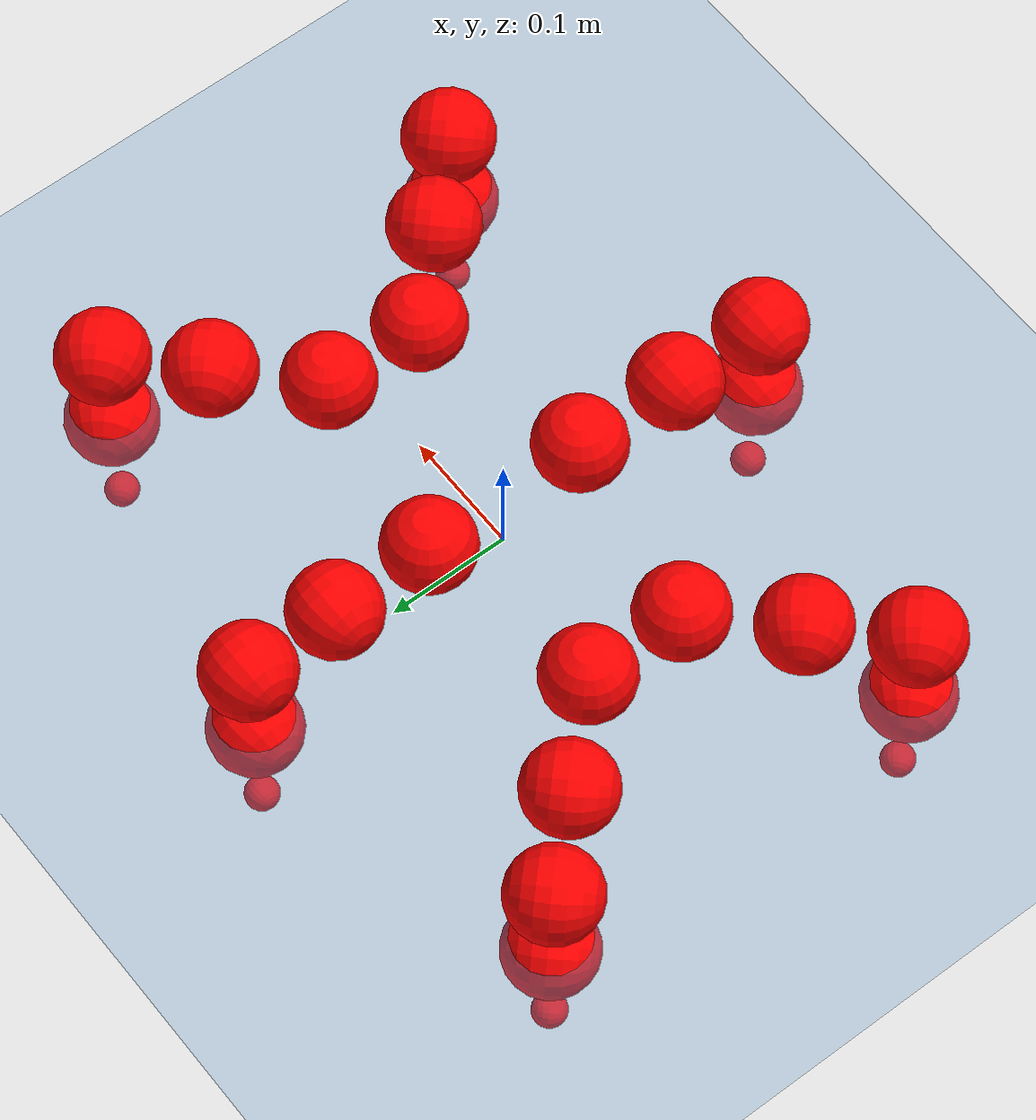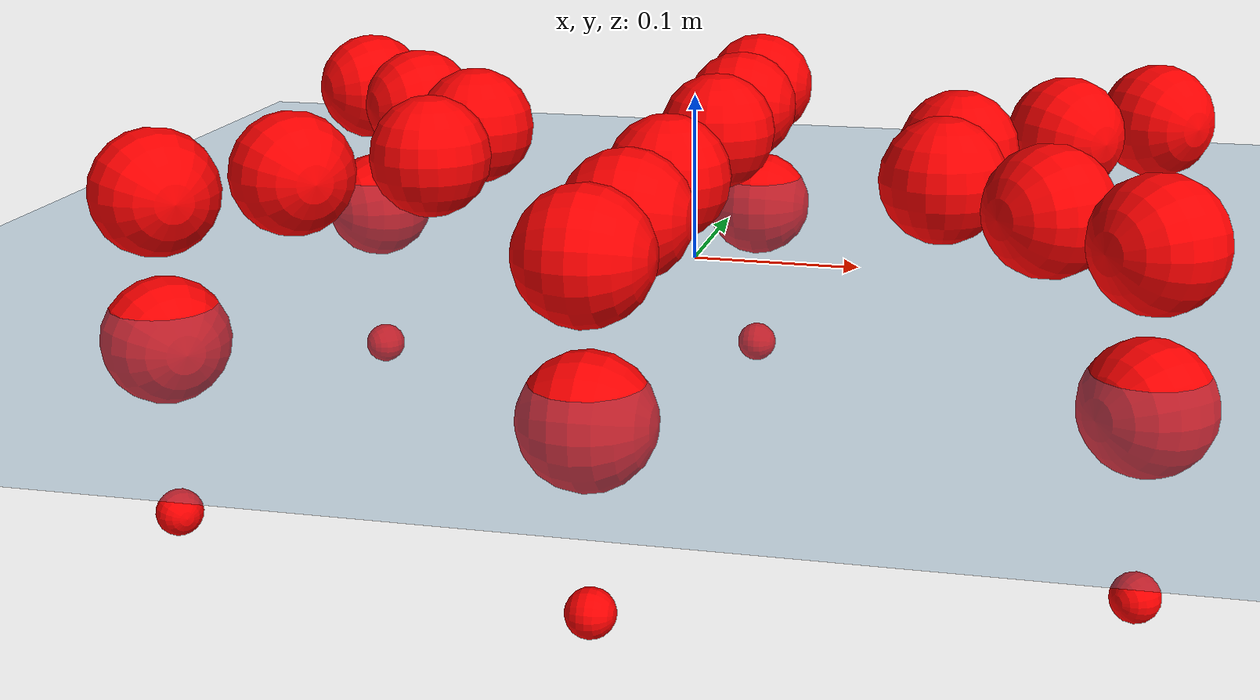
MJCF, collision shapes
<mujoco model="Golem">
  <compiler angle="radian" assetdir="assets" balanceinertia="true" inertiafromgeom="false"/>

  <option timestep="0.005" density="1.2" viscosity="2e-05"/>

  <size nkey="1"/>

  <visual>
    <quality shadowsize="8192"/>
    <map shadowclip="0.5"/>
  </visual>

  <default>
    <default class="/">
      <joint armature="0.01" damping="0.01" frictionloss="0.01"/>
      <geom contype="0" conaffinity="0" group="1" solref="-1000 -80"/>
      <site size="0.01 0.005 0.005" group="5"/>
      <general forcelimited="true" biastype="affine" gainprm="25" biasprm="0 -25 -0.5"/>
      <default class="visual">
        <geom type="mesh" group="2"/>
      </default>
      <default class="collision">
        <geom group="3"/>
      </default>
      <default class="foot">
        <geom size="0.01 0 0" condim="6" group="4" priority="1" solimp="0.015 1 0.01"/>
      </default>
      <default class="reward_collision_sphere">
        <geom group="5" rgba="1 0 0 1"/>
      </default>
    </default>
  </default>

  <asset>
    <texture type="skybox" colorspace="auto" name="//unnamed_texture_0" builtin="gradient" rgb1="0.95 0.95 0.95" rgb2="0.95 0.95 0.95" width="100" height="600"/>
    <texture type="2d" colorspace="auto" name="texplane" builtin="checker" rgb1="0.345 0.575 0.748" rgb2="0.345 0.575 0.748" markrgb="1 1 1" width="512" height="512"/>
    <material name="MatPlane" class="/" texture="texplane" texuniform="true" texrepeat="2 2" specular="0.9"/>
    <mesh name="body" class="/" file="body.stl" scale="0.001 0.001 0.001"/>
    <mesh name="coxa" class="/" file="coxa.stl" scale="0.001 0.001 0.001"/>
    <mesh name="femur" class="/" file="femur.stl" scale="0.001 0.001 0.001"/>
    <mesh name="tibia" class="/" file="tibia.stl" scale="0.001 0.001 0.001"/>
    <mesh name="tarsus" class="/" file="tarsus.stl" scale="0.001 0.001 0.001"/>
  </asset>

  <worldbody>
    <geom name="floor" class="/" size="100 100 0.125" type="plane" group="0" material="MatPlane"/>
    <light name="toplight_shadow" class="/" pos="0 0 5" dir="0.0990148 0.0990148 -0.990148" type="directional" ambient="0.04 0.04 0.04" diffuse="0.55 0.55 0.55" specular="0.12 0.12 0.12"/>
    <light name="toplight_fill" class="/" pos="0 0 5" dir="0.0990148 0.0990148 -0.990148" type="directional" castshadow="false" ambient="0.04 0.04 0.04" diffuse="0.3 0.3 0.3" specular="0.08 0.08 0.08"/>
    <body name="trunk" pos="0.000302839 -0.000277685 -0.000106034" quat="1 3.22541e-06 -4.11007e-05 5.46796e-05">
      <inertial pos="-0.000372128 -0.00045236 -0.00367707" quat="0.999991 -0.00230026 0.000375251 0.00362024" mass="2.75525" diaginertia="0.00874115 0.0021752 0.0108671"/>
      <joint name="//unnamed_joint_0" type="free"/>
      <geom name="//unnamed_geom_1" class="/" pos="0 0 0.0651005" quat="1 0 0 0" type="mesh" rgba="0.9 0.9 0.9 1" mesh="body"/>
      <site name="imu" class="/" pos="0.125278 0.00140533 0.104072" size="0.00910437"/>
      <camera name="track" class="/" pos="0 -1.47822 0" quat="0.707107 0.707107 0 0" mode="trackcom"/>
      <camera name="ego_camera" class="/" pos="0.126751 0 0.101719" quat="-0.5 -0.5 0.5 0.5"/>
      <body name="coxa_RR" pos="-0.173356 -0.0612346 0.0647323" quat="0.382626 5.55232e-05 7.76622e-05 -0.923903">
        <inertial pos="-0.000208134 -1.19951e-05 0.000175009" quat="0.999998 -0.000275911 0.000173572 -0.00180515" mass="0.149651" diaginertia="0.00884142 0.00217671 0.0108591"/>
        <joint name="coxa_joint_RR" class="/" pos="0 0 0" axis="-0.000198808 1.55169e-05 -1" range="-3.13651 3.15512" armature="0.0093988" damping="0.00911649" frictionloss="0.00903953"/>
        <geom name="//unnamed_geom_2" class="/" type="mesh" rgba="0.2 0.2 0.2 1" mesh="coxa"/>
        <geom name="//unnamed_geom_3" class="reward_collision_sphere" size="0.0364175" pos="-0.0292502 0 0"/>
        <body name="femur_RR" pos="0.0574731 0.0004792 0.000225926" quat="0.499778 -0.500165 0.500312 0.499745">
          <inertial pos="-0.000447871 -0.000691388 0.000537147" quat="1 0.000155063 0.000301019 3.21655e-05" mass="0.151149" diaginertia="0.00885649 0.00221709 0.0109302"/>
          <joint name="femur_joint_RR" class="/" pos="0 0 0" axis="5.47287e-05 7.40519e-05 -1" range="-3.12951 3.14433" armature="0.00949583" damping="0" frictionloss="0.00871028"/>
          <geom name="//unnamed_geom_4" class="/" type="mesh" rgba="0.9 0.9 0.9 1" mesh="femur"/>
          <geom name="//unnamed_geom_5" class="reward_collision_sphere" size="0.0364175"/>
          <body name="tibia_RR" pos="0.000634511 -0.0803117 0.000461573" quat="-0.000140931 1 -0.000209552 6.79683e-05">
            <inertial pos="0.000737385 0.000857387 -0.00011284" quat="0.999991 -0.000940499 -0.00296906 -0.00277377" mass="0.151096" diaginertia="0.00887137 0.00220702 0.0108674"/>
            <joint name="tibia_joint_RR" class="/" pos="0 0 0" axis="-0.00320367 -0.00263174 0.999991" range="-3.13827 3.13828" armature="0.00946476" damping="0.00136548" frictionloss="0.00898205"/>
            <geom name="//unnamed_geom_6" class="/" type="mesh" rgba="0.2 0.2 0.2 1" mesh="tibia"/>
            <geom name="//unnamed_geom_7" class="reward_collision_sphere" size="0.0364175"/>
            <body name="tarsus_RR" pos="0.0852193 -3.52437e-05 -0.000421755" quat="1 2.83e-05 0.000165101 2.36028e-06">
              <inertial pos="0.0589967 7.38799e-05 0.000799659" quat="0.500016 0.499603 0.500539 0.499842" mass="0.151498" diaginertia="0.00880895 0.00219638 0.0109294"/>
              <joint name="tarsus_joint_RR" class="/" pos="0 0 0" axis="-0.00265012 0.00125164 0.999996" range="-3.1399 3.13567" armature="0.00867964" damping="0.00849139" frictionloss="0.00874659"/>
              <geom name="//unnamed_geom_8" class="/" type="mesh" rgba="0.9 0.9 0.9 1" mesh="tarsus"/>
              <geom name="foot_1" class="foot" size="0.00926158" pos="0.109201 0 0" quat="0 -0.707107 0 0.707107"/>
              <geom name="//unnamed_geom_10" class="reward_collision_sphere" size="0.0364175"/>
              <geom name="//unnamed_geom_11" class="reward_collision_sphere" size="0.0136566" pos="0.104813 0 0"/>
              <site name="foot_1" class="foot" pos="0.109201 0 0" quat="0 -0.707107 0 0.707107" size="0.00910437"/>
            </body>
          </body>
        </body>
      </body>
      <body name="coxa_RM" pos="-0.000673379 -0.0984511 0.0658451" quat="0.707097 4.75545e-05 0.000113017 -0.707116">
        <inertial pos="0.00073837 0.000128538 0.000460649" quat="1 0.000136519 -8.98184e-06 -0.000143053" mass="0.151581" diaginertia="0.00871064 0.00220919 0.0108746"/>
        <joint name="coxa_joint_RM" class="/" pos="0 0 0" axis="-4.3817e-07 -7.8069e-07 -1" stiffness="0.000492564" range="-3.14583 3.14105" armature="0.00906644" damping="0.00919644" frictionloss="0.00906902"/>
        <geom name="//unnamed_geom_12" class="/" type="mesh" rgba="0.2 0.2 0.2 1" mesh="coxa"/>
        <geom name="//unnamed_geom_13" class="reward_collision_sphere" size="0.0364175" pos="-0.0292502 0 0"/>
        <body name="femur_RM" pos="0.0579422 -0.00128663 -0.000691599" quat="0.500094 -0.499886 0.500095 0.499925">
          <inertial pos="-0.00012649 -5.53889e-05 4.83673e-07" quat="0.999997 0.00195081 0.000399396 -0.0014033" mass="0.149665" diaginertia="0.00873135 0.00220684 0.0108282"/>
          <joint name="femur_joint_RM" class="/" pos="0 0 0" axis="-0.000591085 0.00142235 -0.999999" range="-3.14338 3.14144" armature="0.00901228" damping="0.0112605" frictionloss="0.0090937"/>
          <geom name="//unnamed_geom_14" class="/" type="mesh" rgba="0.9 0.9 0.9 1" mesh="femur"/>
          <geom name="//unnamed_geom_15" class="reward_collision_sphere" size="0.0364175"/>
          <body name="tibia_RM" pos="0.000776719 -0.0793012 -0.000854003" quat="4.96711e-05 1 6.68479e-05 -3.92121e-05">
            <inertial pos="-4.21276e-05 -0.000402225 8.10435e-05" quat="0.999998 -0.00195828 -0.000890782 0.000264075" mass="0.151143" diaginertia="0.00882585 0.00220613 0.0108056"/>
            <joint name="tibia_joint_RM" class="/" pos="0 0 0" axis="-0.000830512 -0.00187566 0.999998" range="-3.15676 3.12526" armature="0.0089761" damping="0" frictionloss="0.00901019"/>
            <geom name="//unnamed_geom_16" class="/" type="mesh" rgba="0.2 0.2 0.2 1" mesh="tibia"/>
            <geom name="//unnamed_geom_17" class="reward_collision_sphere" size="0.0364175"/>
            <body name="tarsus_RM" pos="0.0856538 -3.67567e-05 -0.000214774" quat="1 0.000326152 0.000258027 -1.60929e-05">
              <inertial pos="0.0583142 0.000297792 0.000412042" quat="0.499508 0.500146 0.500412 0.499934" mass="0.151892" diaginertia="0.00891441 0.00224061 0.0110649"/>
              <joint name="tarsus_joint_RM" class="/" pos="0 0 0" axis="0.0027965 0.00367483 0.999989" stiffness="9.37695e-05" range="-3.14357 3.1319" armature="0.00876803" damping="0.00416764" frictionloss="0.00907863"/>
              <geom name="//unnamed_geom_18" class="/" type="mesh" rgba="0.9 0.9 0.9 1" mesh="tarsus"/>
              <geom name="foot_2" class="foot" size="0.00913979" pos="0.109201 0 0" quat="0 -0.707107 0 0.707107"/>
              <geom name="//unnamed_geom_20" class="reward_collision_sphere" size="0.0364175"/>
              <geom name="//unnamed_geom_21" class="reward_collision_sphere" size="0.0136566" pos="0.104813 0 0"/>
              <site name="foot_2" class="foot" pos="0.109201 0 0" quat="0 -0.707107 0 0.707107" size="0.00910437"/>
            </body>
          </body>
        </body>
      </body>
      <body name="coxa_RF" pos="0.172527 -0.060936 0.0653476" quat="0.92389 1.73948e-05 -0.000403149 -0.382657">
        <inertial pos="0.00059765 0.00044921 -0.000245571" quat="0.999994 -0.00340877 0.000629606 9.17276e-05" mass="0.152854" diaginertia="0.00897428 0.00220454 0.0110943"/>
        <joint name="coxa_joint_RF" class="/" pos="0 0 0" axis="0.00460302 -0.00253166 -0.999986" range="-3.12427 3.13863" armature="0.00947646" damping="0.00691055" frictionloss="0.00873635"/>
        <geom name="//unnamed_geom_22" class="/" type="mesh" rgba="0.2 0.2 0.2 1" mesh="coxa"/>
        <geom name="//unnamed_geom_23" class="reward_collision_sphere" size="0.0364175" pos="-0.0292502 0 0"/>
        <body name="femur_RF" pos="0.057731 0.00102166 0.00013169" quat="0.499911 -0.500044 0.499971 0.500073">
          <inertial pos="0.000301681 0.000298232 -1.2218e-05" quat="1 -0.000395103 -5.01908e-05 -0.000418068" mass="0.15119" diaginertia="0.00875296 0.00218255 0.0109236"/>
          <joint name="femur_joint_RF" class="/" pos="0 0 0" axis="-0.000991083 -0.000463229 -0.999999" range="-3.13934 3.14001" armature="0.00885418" damping="0.0113887" frictionloss="0.00894776"/>
          <geom name="//unnamed_geom_24" class="/" type="mesh" rgba="0.9 0.9 0.9 1" mesh="femur"/>
          <geom name="//unnamed_geom_25" class="reward_collision_sphere" size="0.0364175"/>
          <body name="tibia_RF" pos="4.63535e-05 -0.0799803 -0.000364257" quat="-1.11029e-06 1 -3.15403e-06 -1.30567e-06">
            <inertial pos="0.000232112 -0.000167014 1.3313e-05" quat="0.999999 4.07858e-05 0.000905455 0.000476582" mass="0.151969" diaginertia="0.00898998 0.0022278 0.0109974"/>
            <joint name="tibia_joint_RF" class="/" pos="0 0 0" axis="-0.000412152 0.00237624 0.999997" stiffness="0.00122092" range="-3.15515 3.13363" armature="0.00910024" damping="0" frictionloss="0.00877098"/>
            <geom name="//unnamed_geom_26" class="/" type="mesh" rgba="0.2 0.2 0.2 1" mesh="tibia"/>
            <geom name="//unnamed_geom_27" class="reward_collision_sphere" size="0.0364175"/>
            <body name="tarsus_RF" pos="0.085229 0.000878164 0.00113853" quat="1 -0.000474708 -6.46941e-05 0.000137305">
              <inertial pos="0.0586289 0.000934987 -4.43249e-05" quat="0.498074 0.502059 0.499744 0.500115" mass="0.152603" diaginertia="0.00885719 0.00219461 0.0109319"/>
              <joint name="tarsus_joint_RF" class="/" pos="0 0 0" axis="-0.000125697 0.000562238 1" range="-3.14931 3.13739" armature="0.00912246" damping="0.00888629" frictionloss="0.00935888"/>
              <geom name="//unnamed_geom_28" class="/" type="mesh" rgba="0.9 0.9 0.9 1" mesh="tarsus"/>
              <geom name="foot_3" class="foot" size="0.00901415" pos="0.109201 0 0" quat="0 -0.707107 0 0.707107"/>
              <geom name="//unnamed_geom_30" class="reward_collision_sphere" size="0.0364175"/>
              <geom name="//unnamed_geom_31" class="reward_collision_sphere" size="0.0136566" pos="0.104813 0 0"/>
              <site name="foot_3" class="foot" pos="0.109201 0 0" quat="0 -0.707107 0 0.707107" size="0.00910437"/>
            </body>
          </body>
        </body>
      </body>
      <body name="coxa_LR" pos="-0.172692 0.0636502 0.0666749" quat="0.382733 9.08355e-05 0.000147623 0.923859">
        <inertial pos="0.000169563 -0.000248494 0.0013269" quat="1 -3.65689e-05 2.60238e-05 -3.16921e-05" mass="0.152459" diaginertia="0.00875706 0.00221455 0.0108796"/>
        <joint name="coxa_joint_LR" class="/" pos="0 0 0" axis="-0.00098099 0.00010564 -1" range="-3.14265 3.13194" armature="0.0087643" damping="0.0105924" frictionloss="0.00918224"/>
        <geom name="//unnamed_geom_32" class="/" type="mesh" rgba="0.2 0.2 0.2 1" mesh="coxa"/>
        <geom name="//unnamed_geom_33" class="reward_collision_sphere" size="0.0364175" pos="-0.0292502 0 0"/>
        <body name="femur_LR" pos="0.0600282 -0.00234053 -0.00105786" quat="0.500184 -0.499685 0.500005 0.500126">
          <inertial pos="0.000259584 -0.000165949 -0.000258934" quat="1 -0.000277324 -1.34735e-05 -4.73755e-05" mass="0.149598" diaginertia="0.00868922 0.00217963 0.0107741"/>
          <joint name="femur_joint_LR" class="/" pos="0 0 0" axis="-0.0005395 0.000692099 1" range="-3.12244 3.15582" armature="0.00942393" damping="0.00977227" frictionloss="0.00938216"/>
          <geom name="//unnamed_geom_34" class="/" type="mesh" rgba="0.9 0.9 0.9 1" mesh="femur"/>
          <geom name="//unnamed_geom_35" class="reward_collision_sphere" size="0.0364175"/>
          <body name="tibia_LR" pos="0.000622778 -0.0810504 -0.00101179" quat="-0.000162624 1 9.31406e-05 7.38908e-05">
            <inertial pos="9.81976e-05 0.000413961 -3.96295e-05" quat="0.999996 -0.00125503 -7.98202e-05 0.0023808" mass="0.154104" diaginertia="0.00899302 0.00221151 0.0109914"/>
            <joint name="tibia_joint_LR" class="/" pos="0 0 0" axis="-0.00306875 -0.00278751 -0.999991" range="-3.14135 3.14679" armature="0.00909128" damping="0.0058142" frictionloss="0.00870946"/>
            <geom name="//unnamed_geom_36" class="/" type="mesh" rgba="0.2 0.2 0.2 1" mesh="tibia"/>
            <geom name="//unnamed_geom_37" class="reward_collision_sphere" size="0.0364175"/>
            <body name="tarsus_LR" pos="0.0860503 0.00175199 0.00144483" quat="1 0.00045059 -0.00012609 -6.52563e-05">
              <inertial pos="0.0602697 -0.000127976 0.000852707" quat="0.499411 0.500347 0.500316 0.499926" mass="0.152236" diaginertia="0.00880958 0.0021807 0.0109348"/>
              <joint name="tarsus_joint_LR" class="/" pos="0 0 0" axis="0.0020298 0.000155858 -0.999998" range="-3.12304 3.14373" armature="0.00938226" damping="0.0269596" frictionloss="0.00914418"/>
              <geom name="//unnamed_geom_38" class="/" type="mesh" rgba="0.9 0.9 0.9 1" mesh="tarsus"/>
              <geom name="foot_4" class="foot" size="0.00884723" pos="0.109201 0 0" quat="0.707107 0 -0.707107 0"/>
              <geom name="//unnamed_geom_40" class="reward_collision_sphere" size="0.0364175"/>
              <geom name="//unnamed_geom_41" class="reward_collision_sphere" size="0.0136566" pos="0.104813 0 0"/>
              <site name="foot_4" class="foot" pos="0.109201 0 0" quat="0.707107 0 -0.707107 0" size="0.00910437"/>
            </body>
          </body>
        </body>
      </body>
      <body name="coxa_LM" pos="-0.000764499 0.0966959 0.0649807" quat="0.707152 -4.31147e-05 0.000179668 0.707062">
        <inertial pos="-0.0006052 0.000216009 0.000194796" quat="0.999996 -0.000189037 -0.00281593 0.000445739" mass="0.152626" diaginertia="0.00876863 0.0022215 0.0109906"/>
        <joint name="coxa_joint_LM" class="/" pos="0 0 0" axis="0.000763232 -0.000254677 -1" range="-3.14503 3.14478" armature="0.00911264" damping="0.00778501" frictionloss="0.00904074"/>
        <geom name="//unnamed_geom_42" class="/" type="mesh" rgba="0.2 0.2 0.2 1" mesh="coxa"/>
        <geom name="//unnamed_geom_43" class="reward_collision_sphere" size="0.0364175" pos="-0.0292502 0 0"/>
        <body name="femur_LM" pos="0.0550299 0.00122339 0.000102313" quat="0.499946 -0.500055 0.499933 0.500066">
          <inertial pos="-0.00105003 -0.000349995 0.000853435" quat="1 0.000562414 -0.000722662 -0.000371791" mass="0.149391" diaginertia="0.00867973 0.00218302 0.0106852"/>
          <joint name="femur_joint_LM" class="/" pos="0 0 0" axis="0.00678655 -0.00173895 0.999975" range="-3.13615 3.14405" armature="0.00920792" damping="0.00240656" frictionloss="0.0087098"/>
          <geom name="//unnamed_geom_44" class="/" type="mesh" rgba="0.9 0.9 0.9 1" mesh="femur"/>
          <geom name="//unnamed_geom_45" class="reward_collision_sphere" size="0.0364175"/>
          <body name="tibia_LM" pos="-0.00018843 -0.0768389 0.00171198" quat="-3.53091e-05 1 -6.55053e-05 6.39963e-05">
            <inertial pos="-0.0012335 2.18954e-05 -5.30195e-05" quat="1 -0.000261169 0.000232395 0.000220045" mass="0.149267" diaginertia="0.00870692 0.00217646 0.0106823"/>
            <joint name="tibia_joint_LM" class="/" pos="0 0 0" axis="0.000122692 -0.00615048 -0.999981" range="-3.13879 3.13867" armature="0.00924012" damping="0.00473553" frictionloss="0.00905386"/>
            <geom name="//unnamed_geom_46" class="/" type="mesh" rgba="0.2 0.2 0.2 1" mesh="tibia"/>
            <geom name="//unnamed_geom_47" class="reward_collision_sphere" size="0.0364175"/>
            <body name="tarsus_LM" pos="0.0857914 -0.000196451 -0.00084177" quat="1 -1.05164e-05 1.79679e-05 0.000108453">
              <inertial pos="0.0590689 -0.000877723 -0.000764096" quat="0.501341 0.500928 0.499472 0.498253" mass="0.151655" diaginertia="0.00879071 0.00218738 0.0108964"/>
              <joint name="tarsus_joint_LM" class="/" pos="0 0 0" axis="0.00367508 0.00019511 -0.999993" range="-3.14339 3.13698" armature="0.00925583" damping="0.00155008" frictionloss="0.00908983"/>
              <geom name="//unnamed_geom_48" class="/" type="mesh" rgba="0.9 0.9 0.9 1" mesh="tarsus"/>
              <geom name="foot_5" class="foot" size="0.00903233" pos="0.109201 0 0" quat="0.707107 0 -0.707107 0"/>
              <geom name="//unnamed_geom_50" class="reward_collision_sphere" size="0.0364175"/>
              <geom name="//unnamed_geom_51" class="reward_collision_sphere" size="0.0136566" pos="0.104813 0 0"/>
              <site name="foot_5" class="foot" pos="0.109201 0 0" quat="0.707107 0 -0.707107 0" size="0.00910437"/>
            </body>
          </body>
        </body>
      </body>
      <body name="coxa_LF" pos="0.173694 0.0624699 0.0652046" quat="0.923876 4.36172e-06 -8.31529e-07 0.382692">
        <inertial pos="8.17066e-05 -6.50557e-05 -0.000412382" quat="0.999997 0.00216934 -1.45715e-05 -0.000631153" mass="0.15086" diaginertia="0.00873016 0.00218895 0.010888"/>
        <joint name="coxa_joint_LF" class="/" pos="0 0 0" axis="-0.000172668 -0.000127777 -1" range="-3.13118 3.13568" armature="0.00905032" damping="0" frictionloss="0.00940874"/>
        <geom name="//unnamed_geom_52" class="/" type="mesh" rgba="0.2 0.2 0.2 1" mesh="coxa"/>
        <geom name="//unnamed_geom_53" class="reward_collision_sphere" size="0.0364175" pos="-0.0292502 0 0"/>
        <body name="femur_LF" pos="0.0577064 0.0001822 -0.000564661" quat="0.499971 -0.499991 0.500026 0.500012">
          <inertial pos="-0.000221732 -0.000141596 -0.000268003" quat="0.999991 -0.000869917 -0.00418125 -0.000752185" mass="0.152347" diaginertia="0.00890471 0.00219432 0.0109118"/>
          <joint name="femur_joint_LF" class="/" pos="0 0 0" axis="0.000287225 0.00290714 0.999996" range="-3.14126 3.13765" armature="0.00906047" damping="0.00338006" frictionloss="0.00890006"/>
          <geom name="//unnamed_geom_54" class="/" type="mesh" rgba="0.9 0.9 0.9 1" mesh="femur"/>
          <geom name="//unnamed_geom_55" class="reward_collision_sphere" size="0.0364175"/>
          <body name="tibia_LF" pos="-0.00045236 -0.0792045 0.000146433" quat="7.62554e-07 1 -2.1414e-06 -7.08472e-06">
            <inertial pos="0.000311615 0.00019528 0.000151069" quat="1 -0.000102608 -7.38294e-05 -0.000162121" mass="0.14892" diaginertia="0.00876318 0.00220993 0.0108983"/>
            <joint name="tibia_joint_LF" class="/" pos="0 0 0" axis="-0.000896584 0.00259965 -0.999996" range="-3.12817 3.13273" armature="0.00919072" damping="0" frictionloss="0.00910054"/>
            <geom name="//unnamed_geom_56" class="/" type="mesh" rgba="0.2 0.2 0.2 1" mesh="tibia"/>
            <geom name="//unnamed_geom_57" class="reward_collision_sphere" size="0.0364175"/>
            <body name="tarsus_LF" pos="0.0853443 -0.000378664 -0.000597993" quat="1 -7.66432e-05 -0.000239701 0.000102483">
              <inertial pos="0.058611 -2.90312e-05 0.000256646" quat="0.499972 0.499816 0.500282 0.499929" mass="0.153684" diaginertia="0.00895133 0.00224778 0.0110247"/>
              <joint name="tarsus_joint_LF" class="/" pos="0 0 0" axis="0.00171643 0.000461148 -0.999998" range="-3.13574 3.15202" armature="0.00892344" damping="0.0129413" frictionloss="0.00930053"/>
              <geom name="//unnamed_geom_58" class="/" type="mesh" rgba="0.9 0.9 0.9 1" mesh="tarsus"/>
              <geom name="foot_6" class="foot" size="0.0092538" pos="0.109201 0 0" quat="0.707107 0 -0.707107 0"/>
              <geom name="//unnamed_geom_60" class="reward_collision_sphere" size="0.0364175"/>
              <geom name="//unnamed_geom_61" class="reward_collision_sphere" size="0.0136566" pos="0.104813 0 0"/>
              <site name="foot_6" class="foot" pos="0.109201 0 0" quat="0.707107 0 -0.707107 0" size="0.00910437"/>
            </body>
          </body>
        </body>
      </body>
    </body>
  </worldbody>

  <contact>
    <pair class="/" geom1="floor" geom2="foot_1" name="//unnamed_contact_0"/>
    <pair class="/" geom1="floor" geom2="foot_2" name="//unnamed_contact_1"/>
    <pair class="/" geom1="floor" geom2="foot_3" name="//unnamed_contact_2"/>
    <pair class="/" geom1="floor" geom2="foot_4" name="//unnamed_contact_3"/>
    <pair class="/" geom1="floor" geom2="foot_5" name="//unnamed_contact_4"/>
    <pair class="/" geom1="floor" geom2="foot_6" name="//unnamed_contact_5"/>
  </contact>

  <actuator>
    <general name="coxa_joint_RR" class="/" joint="coxa_joint_RR" forcerange="-6.44413 6.44413" gainprm="22.0956" biasprm="0 -22.0956 -0.476394"/>
    <general name="femur_joint_RR" class="/" joint="femur_joint_RR" forcerange="-6.43792 6.43792" gainprm="22.0956" biasprm="0 -22.0956 -0.476394"/>
    <general name="tibia_joint_RR" class="/" joint="tibia_joint_RR" forcerange="-6.84781 6.84781" gainprm="22.0956" biasprm="0 -22.0956 -0.476394"/>
    <general name="tarsus_joint_RR" class="/" joint="tarsus_joint_RR" forcerange="-6.81536 6.81536" gainprm="22.0956" biasprm="0 -22.0956 -0.476394"/>
    <general name="coxa_joint_RM" class="/" joint="coxa_joint_RM" forcerange="-6.69348 6.69348" gainprm="22.0956" biasprm="0 -22.0956 -0.476394"/>
    <general name="femur_joint_RM" class="/" joint="femur_joint_RM" forcerange="-6.7202 6.7202" gainprm="22.0956" biasprm="0 -22.0956 -0.476394"/>
    <general name="tibia_joint_RM" class="/" joint="tibia_joint_RM" forcerange="-6.60918 6.60918" gainprm="22.0956" biasprm="0 -22.0956 -0.476394"/>
    <general name="tarsus_joint_RM" class="/" joint="tarsus_joint_RM" forcerange="-6.68686 6.68686" gainprm="22.0956" biasprm="0 -22.0956 -0.476394"/>
    <general name="coxa_joint_RF" class="/" joint="coxa_joint_RF" forcerange="-6.57779 6.57779" gainprm="22.0956" biasprm="0 -22.0956 -0.476394"/>
    <general name="femur_joint_RF" class="/" joint="femur_joint_RF" forcerange="-6.7782 6.7782" gainprm="22.0956" biasprm="0 -22.0956 -0.476394"/>
    <general name="tibia_joint_RF" class="/" joint="tibia_joint_RF" forcerange="-6.62704 6.62704" gainprm="22.0956" biasprm="0 -22.0956 -0.476394"/>
    <general name="tarsus_joint_RF" class="/" joint="tarsus_joint_RF" forcerange="-6.56086 6.56086" gainprm="22.0956" biasprm="0 -22.0956 -0.476394"/>
    <general name="coxa_joint_LR" class="/" joint="coxa_joint_LR" forcerange="-6.67395 6.67395" gainprm="22.0956" biasprm="0 -22.0956 -0.476394"/>
    <general name="femur_joint_LR" class="/" joint="femur_joint_LR" forcerange="-6.69304 6.69304" gainprm="22.0956" biasprm="0 -22.0956 -0.476394"/>
    <general name="tibia_joint_LR" class="/" joint="tibia_joint_LR" forcerange="-6.74136 6.74136" gainprm="22.0956" biasprm="0 -22.0956 -0.476394"/>
    <general name="tarsus_joint_LR" class="/" joint="tarsus_joint_LR" forcerange="-6.62491 6.62491" gainprm="22.0956" biasprm="0 -22.0956 -0.476394"/>
    <general name="coxa_joint_LM" class="/" joint="coxa_joint_LM" forcerange="-6.59817 6.59817" gainprm="22.0956" biasprm="0 -22.0956 -0.476394"/>
    <general name="femur_joint_LM" class="/" joint="femur_joint_LM" forcerange="-6.69691 6.69691" gainprm="22.0956" biasprm="0 -22.0956 -0.476394"/>
    <general name="tibia_joint_LM" class="/" joint="tibia_joint_LM" forcerange="-6.63485 6.63485" gainprm="22.0956" biasprm="0 -22.0956 -0.476394"/>
    <general name="tarsus_joint_LM" class="/" joint="tarsus_joint_LM" forcerange="-6.65431 6.65431" gainprm="22.0956" biasprm="0 -22.0956 -0.476394"/>
    <general name="coxa_joint_LF" class="/" joint="coxa_joint_LF" forcerange="-6.6573 6.6573" gainprm="22.0956" biasprm="0 -22.0956 -0.476394"/>
    <general name="femur_joint_LF" class="/" joint="femur_joint_LF" forcerange="-6.54001 6.54001" gainprm="22.0956" biasprm="0 -22.0956 -0.476394"/>
    <general name="tibia_joint_LF" class="/" joint="tibia_joint_LF" forcerange="-6.49165 6.49165" gainprm="22.0956" biasprm="0 -22.0956 -0.476394"/>
    <general name="tarsus_joint_LF" class="/" joint="tarsus_joint_LF" forcerange="-6.58472 6.58472" gainprm="22.0956" biasprm="0 -22.0956 -0.476394"/>
  </actuator>

  <sensor>
    <gyro site="imu" name="imu_angular_velocity"/>
    <velocimeter site="imu" name="imu_linear_velocity"/>
    <framelinvel objtype="site" objname="foot_1" name="foot_1_global_linear_velocity"/>
    <framelinvel objtype="site" objname="foot_2" name="foot_2_global_linear_velocity"/>
    <framelinvel objtype="site" objname="foot_3" name="foot_3_global_linear_velocity"/>
    <framelinvel objtype="site" objname="foot_4" name="foot_4_global_linear_velocity"/>
    <framelinvel objtype="site" objname="foot_5" name="foot_5_global_linear_velocity"/>
    <framelinvel objtype="site" objname="foot_6" name="foot_6_global_linear_velocity"/>
  </sensor>

  <keyframe>
    <key name="home" qpos="0 0 0.1457 1 0 0 0 0 0 0 0 0 0 0 0 0 0 0 0 0 0 0 0 0 0 0 0 0 0 0 0"/>
  </keyframe>
</mujoco>
